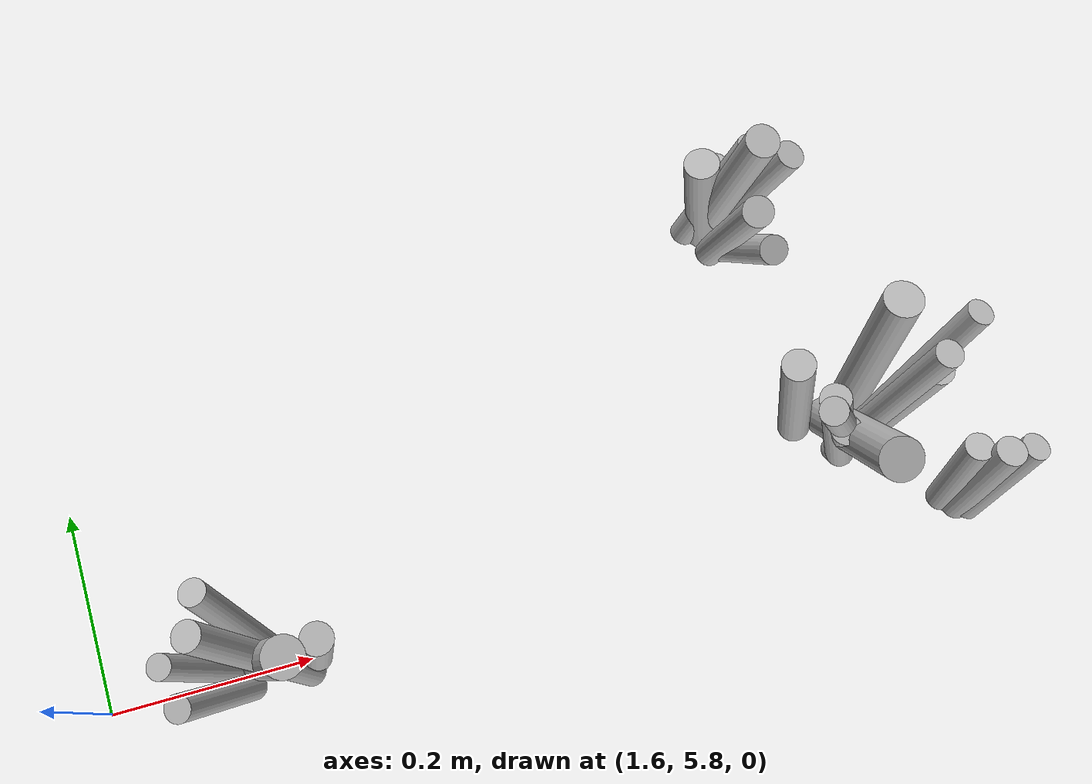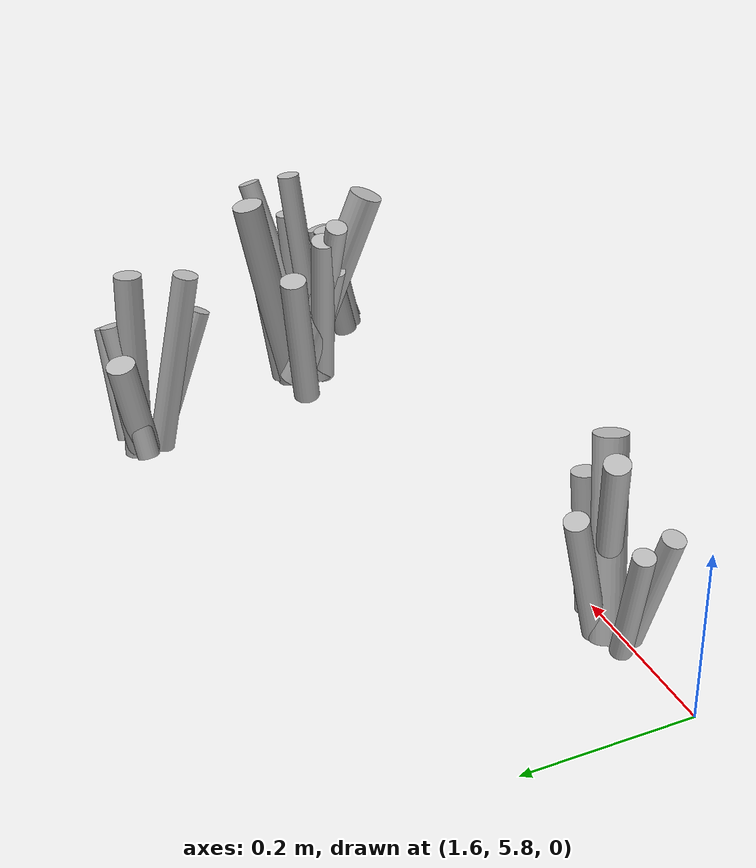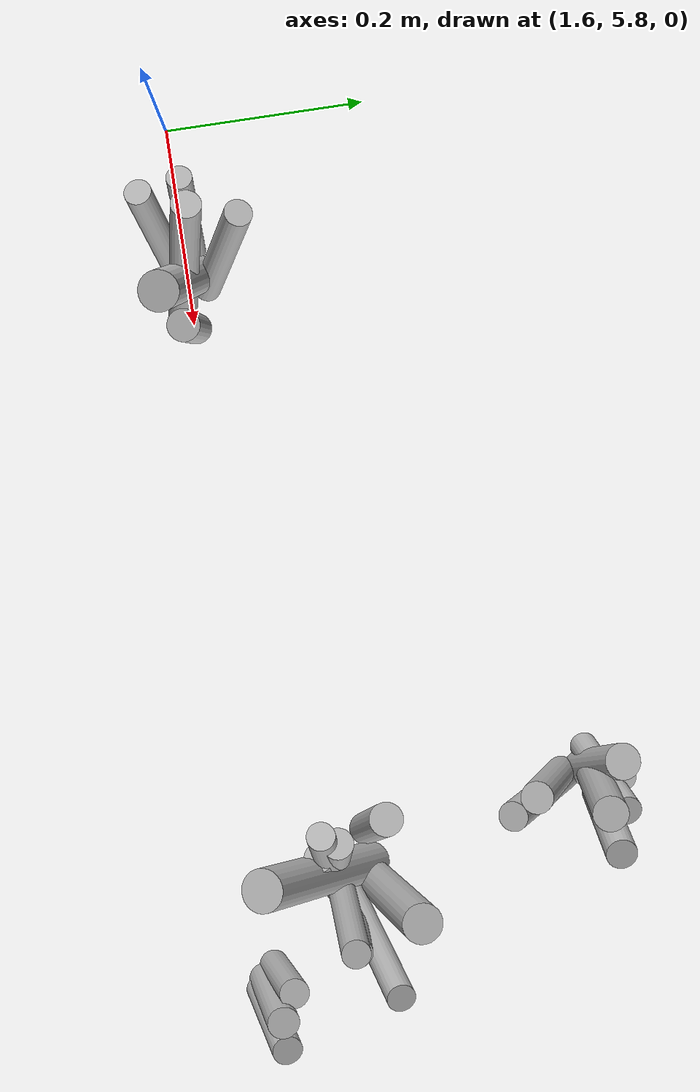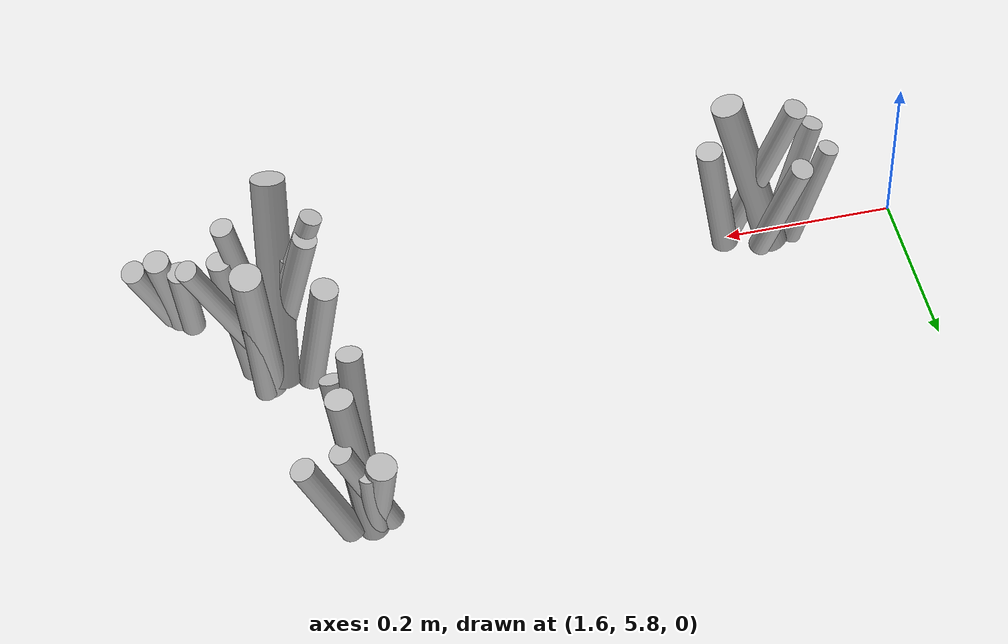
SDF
<sdf version="1.6">
 <world name="default">
  <model name="tussocks">
   <static>true</static>
   <link name="tuft49_0">
    <pose>2.3830 5.9143 0.0746 0 0.1560 1.0411</pose>
    <visual name="tuft49_0_v">
     <geometry><cylinder><radius>0.0133</radius><length>0.1622</length></cylinder></geometry>
     <material>
      <script>
       <uri>model://bushfire/materials/scripts</uri>
       <uri>model://bushfire/materials/textures</uri>
       <name>Bushfire/Tussock</name>
      </script>
     </material>
    </visual>
   </link>
   <link name="tuft49_1">
    <pose>2.4088 5.8878 0.1144 0 0.4189 0.4465</pose>
    <visual name="tuft49_1_v">
     <geometry><cylinder><radius>0.0129</radius><length>0.2487</length></cylinder></geometry>
     <material>
      <script>
       <uri>model://bushfire/materials/scripts</uri>
       <uri>model://bushfire/materials/textures</uri>
       <name>Bushfire/Foliage2</name>
      </script>
     </material>
    </visual>
   </link>
   <link name="tuft49_2">
    <pose>2.3494 5.8596 0.0758 0 0.2447 3.4741</pose>
    <visual name="tuft49_2_v">
     <geometry><cylinder><radius>0.0139</radius><length>0.1649</length></cylinder></geometry>
     <material>
      <script>
       <uri>model://bushfire/materials/scripts</uri>
       <uri>model://bushfire/materials/textures</uri>
       <name>Bushfire/Tussock</name>
      </script>
     </material>
    </visual>
   </link>
   <link name="tuft49_3">
    <pose>2.3815 5.8694 0.1223 0 0.2089 0.2939</pose>
    <visual name="tuft49_3_v">
     <geometry><cylinder><radius>0.0130</radius><length>0.2659</length></cylinder></geometry>
     <material>
      <script>
       <uri>model://bushfire/materials/scripts</uri>
       <uri>model://bushfire/materials/textures</uri>
       <name>Bushfire/Tussock</name>
      </script>
     </material>
    </visual>
   </link>
   <link name="tuft49_4">
    <pose>2.3994 5.8724 0.0951 0 0.1513 0.2465</pose>
    <visual name="tuft49_4_v">
     <geometry><cylinder><radius>0.0143</radius><length>0.2068</length></cylinder></geometry>
     <material>
      <script>
       <uri>model://bushfire/materials/scripts</uri>
       <uri>model://bushfire/materials/textures</uri>
       <name>Bushfire/Foliage2</name>
      </script>
     </material>
    </visual>
   </link>
   <link name="tuft49_5">
    <pose>2.3813 5.9154 0.1125 0 0.2064 1.0723</pose>
    <visual name="tuft49_5_v">
     <geometry><cylinder><radius>0.0183</radius><length>0.2445</length></cylinder></geometry>
     <material>
      <script>
       <uri>model://bushfire/materials/scripts</uri>
       <uri>model://bushfire/materials/textures</uri>
       <name>Bushfire/Foliage2</name>
      </script>
     </material>
    </visual>
   </link>
   <link name="tuft49_6">
    <pose>2.3500 5.8502 0.1191 0 0.3650 4.5807</pose>
    <visual name="tuft49_6_v">
     <geometry><cylinder><radius>0.0198</radius><length>0.2588</length></cylinder></geometry>
     <material>
      <script>
       <uri>model://bushfire/materials/scripts</uri>
       <uri>model://bushfire/materials/textures</uri>
       <name>Bushfire/Tussock</name>
      </script>
     </material>
    </visual>
   </link>
   <link name="tuft49_7">
    <pose>2.3382 5.8654 0.1001 0 0.2168 2.7707</pose>
    <visual name="tuft49_7_v">
     <geometry><cylinder><radius>0.0143</radius><length>0.2176</length></cylinder></geometry>
     <material>
      <script>
       <uri>model://bushfire/materials/scripts</uri>
       <uri>model://bushfire/materials/textures</uri>
       <name>Bushfire/Tussock</name>
      </script>
     </material>
    </visual>
   </link>
   <link name="tuft49_8">
    <pose>2.3139 5.9071 0.0817 0 0.1721 2.2455</pose>
    <visual name="tuft49_8_v">
     <geometry><cylinder><radius>0.0158</radius><length>0.1776</length></cylinder></geometry>
     <material>
      <script>
       <uri>model://bushfire/materials/scripts</uri>
       <uri>model://bushfire/materials/textures</uri>
       <name>Bushfire/Foliage2</name>
      </script>
     </material>
    </visual>
   </link>
   <link name="tuft49_9">
    <pose>2.3421 5.8604 0.1111 0 0.3018 3.1322</pose>
    <visual name="tuft49_9_v">
     <geometry><cylinder><radius>0.0130</radius><length>0.2416</length></cylinder></geometry>
     <material>
      <script>
       <uri>model://bushfire/materials/scripts</uri>
       <uri>model://bushfire/materials/textures</uri>
       <name>Bushfire/Tussock</name>
      </script>
     </material>
    </visual>
   </link>
   <link name="tuft98_0">
    <pose>2.3108 6.0657 0.0758 0 0.4161 5.0060</pose>
    <visual name="tuft98_0_v">
     <geometry><cylinder><radius>0.0141</radius><length>0.1648</length></cylinder></geometry>
     <material>
      <script>
       <uri>model://bushfire/materials/scripts</uri>
       <uri>model://bushfire/materials/textures</uri>
       <name>Bushfire/Foliage2</name>
      </script>
     </material>
    </visual>
   </link>
   <link name="tuft98_2">
    <pose>2.2913 6.1306 0.0593 0 0.2153 1.8324</pose>
    <visual name="tuft98_2_v">
     <geometry><cylinder><radius>0.0174</radius><length>0.1290</length></cylinder></geometry>
     <material>
      <script>
       <uri>model://bushfire/materials/scripts</uri>
       <uri>model://bushfire/materials/textures</uri>
       <name>Bushfire/Tussock</name>
      </script>
     </material>
    </visual>
   </link>
   <link name="tuft98_3">
    <pose>2.3461 6.1286 0.0620 0 0.3943 0.0328</pose>
    <visual name="tuft98_3_v">
     <geometry><cylinder><radius>0.0149</radius><length>0.1348</length></cylinder></geometry>
     <material>
      <script>
       <uri>model://bushfire/materials/scripts</uri>
       <uri>model://bushfire/materials/textures</uri>
       <name>Bushfire/Tussock</name>
      </script>
     </material>
    </visual>
   </link>
   <link name="tuft98_5">
    <pose>2.3106 6.1206 0.1031 0 0.1407 5.9560</pose>
    <visual name="tuft98_5_v">
     <geometry><cylinder><radius>0.0162</radius><length>0.2242</length></cylinder></geometry>
     <material>
      <script>
       <uri>model://bushfire/materials/scripts</uri>
       <uri>model://bushfire/materials/textures</uri>
       <name>Bushfire/Foliage2</name>
      </script>
     </material>
    </visual>
   </link>
   <link name="tuft98_7">
    <pose>2.3024 6.1297 0.0747 0 0.3707 0.2794</pose>
    <visual name="tuft98_7_v">
     <geometry><cylinder><radius>0.0134</radius><length>0.1624</length></cylinder></geometry>
     <material>
      <script>
       <uri>model://bushfire/materials/scripts</uri>
       <uri>model://bushfire/materials/textures</uri>
       <name>Bushfire/Foliage2</name>
      </script>
     </material>
    </visual>
   </link>
   <link name="tuft98_8">
    <pose>2.2992 6.0752 0.1023 0 0.1959 4.8453</pose>
    <visual name="tuft98_8_v">
     <geometry><cylinder><radius>0.0147</radius><length>0.2225</length></cylinder></geometry>
     <material>
      <script>
       <uri>model://bushfire/materials/scripts</uri>
       <uri>model://bushfire/materials/textures</uri>
       <name>Bushfire/Tussock</name>
      </script>
     </material>
    </visual>
   </link>
   <link name="tuft98_9">
    <pose>2.2979 6.1355 0.0548 0 0.1591 0.9921</pose>
    <visual name="tuft98_9_v">
     <geometry><cylinder><radius>0.0118</radius><length>0.1192</length></cylinder></geometry>
     <material>
      <script>
       <uri>model://bushfire/materials/scripts</uri>
       <uri>model://bushfire/materials/textures</uri>
       <name>Bushfire/Tussock</name>
      </script>
     </material>
    </visual>
   </link>
   <link name="tuft148_1">
    <pose>2.4657 5.7865 0.0620 0 0.2455 0.7376</pose>
    <visual name="tuft148_1_v">
     <geometry><cylinder><radius>0.0151</radius><length>0.1348</length></cylinder></geometry>
     <material>
      <script>
       <uri>model://bushfire/materials/scripts</uri>
       <uri>model://bushfire/materials/textures</uri>
       <name>Bushfire/Tussock</name>
      </script>
     </material>
    </visual>
   </link>
   <link name="tuft148_6">
    <pose>2.4481 5.7985 0.0568 0 0.2239 1.0890</pose>
    <visual name="tuft148_6_v">
     <geometry><cylinder><radius>0.0141</radius><length>0.1235</length></cylinder></geometry>
     <material>
      <script>
       <uri>model://bushfire/materials/scripts</uri>
       <uri>model://bushfire/materials/textures</uri>
       <name>Bushfire/Tussock</name>
      </script>
     </material>
    </visual>
   </link>
   <link name="tuft148_7">
    <pose>2.4838 5.7836 0.0580 0 0.4099 0.5437</pose>
    <visual name="tuft148_7_v">
     <geometry><cylinder><radius>0.0143</radius><length>0.1261</length></cylinder></geometry>
     <material>
      <script>
       <uri>model://bushfire/materials/scripts</uri>
       <uri>model://bushfire/materials/textures</uri>
       <name>Bushfire/Foliage2</name>
      </script>
     </material>
    </visual>
   </link>
   <link name="tuft159_1">
    <pose>1.7662 5.8063 0.1115 0 0.2951 2.6039</pose>
    <visual name="tuft159_1_v">
     <geometry><cylinder><radius>0.0142</radius><length>0.2423</length></cylinder></geometry>
     <material>
      <script>
       <uri>model://bushfire/materials/scripts</uri>
       <uri>model://bushfire/materials/textures</uri>
       <name>Bushfire/Tussock</name>
      </script>
     </material>
    </visual>
   </link>
   <link name="tuft159_2">
    <pose>1.7067 5.8128 0.0698 0 0.2474 2.9746</pose>
    <visual name="tuft159_2_v">
     <geometry><cylinder><radius>0.0124</radius><length>0.1517</length></cylinder></geometry>
     <material>
      <script>
       <uri>model://bushfire/materials/scripts</uri>
       <uri>model://bushfire/materials/textures</uri>
       <name>Bushfire/Foliage2</name>
      </script>
     </material>
    </visual>
   </link>
   <link name="tuft159_3">
    <pose>1.7180 5.7828 0.0720 0 0.2819 3.4606</pose>
    <visual name="tuft159_3_v">
     <geometry><cylinder><radius>0.0132</radius><length>0.1564</length></cylinder></geometry>
     <material>
      <script>
       <uri>model://bushfire/materials/scripts</uri>
       <uri>model://bushfire/materials/textures</uri>
       <name>Bushfire/Tussock</name>
      </script>
     </material>
    </visual>
   </link>
   <link name="tuft159_5">
    <pose>1.7776 5.8001 0.1042 0 0.2790 5.8818</pose>
    <visual name="tuft159_5_v">
     <geometry><cylinder><radius>0.0191</radius><length>0.2264</length></cylinder></geometry>
     <material>
      <script>
       <uri>model://bushfire/materials/scripts</uri>
       <uri>model://bushfire/materials/textures</uri>
       <name>Bushfire/Tussock</name>
      </script>
     </material>
    </visual>
   </link>
   <link name="tuft159_8">
    <pose>1.8160 5.8012 0.0752 0 0.1599 6.2782</pose>
    <visual name="tuft159_8_v">
     <geometry><cylinder><radius>0.0155</radius><length>0.1635</length></cylinder></geometry>
     <material>
      <script>
       <uri>model://bushfire/materials/scripts</uri>
       <uri>model://bushfire/materials/textures</uri>
       <name>Bushfire/Foliage2</name>
      </script>
     </material>
    </visual>
   </link>
   <link name="tuft159_9">
    <pose>1.7508 5.8425 0.0845 0 0.3128 2.0924</pose>
    <visual name="tuft159_9_v">
     <geometry><cylinder><radius>0.0135</radius><length>0.1836</length></cylinder></geometry>
     <material>
      <script>
       <uri>model://bushfire/materials/scripts</uri>
       <uri>model://bushfire/materials/textures</uri>
       <name>Bushfire/Tussock</name>
      </script>
     </material>
    </visual>
   </link>
  </model>
 </world>
</sdf>
